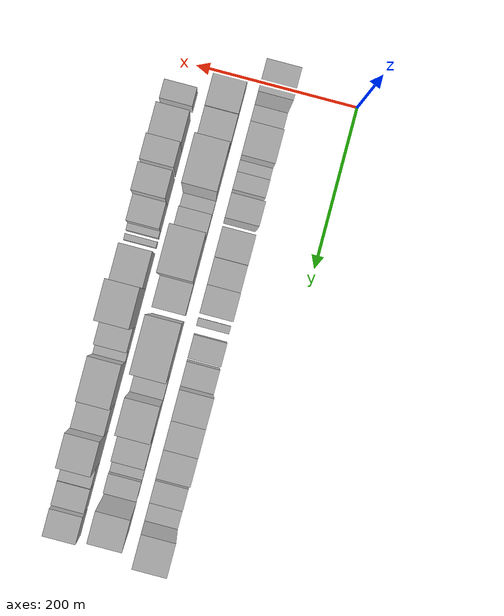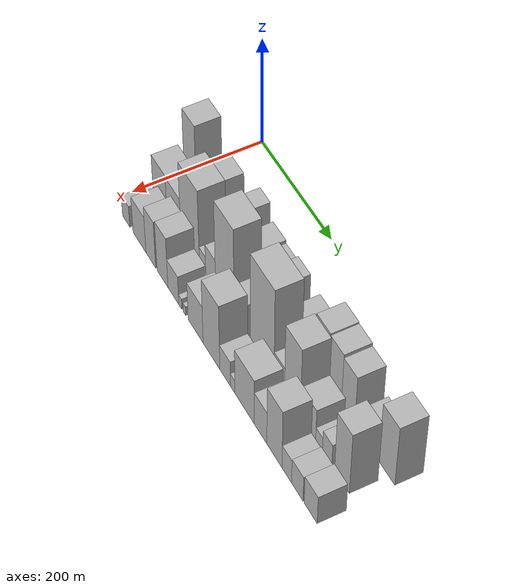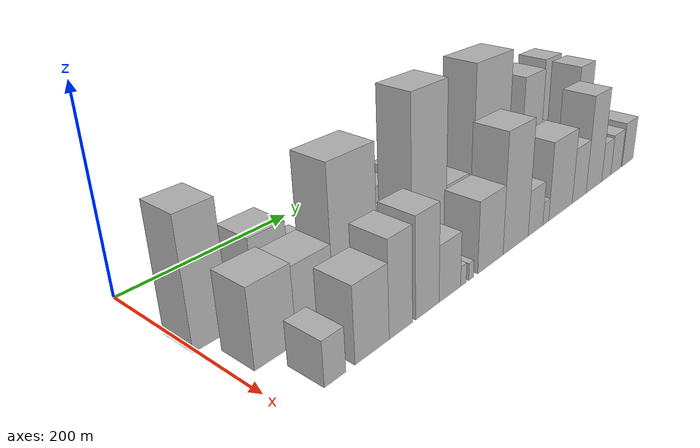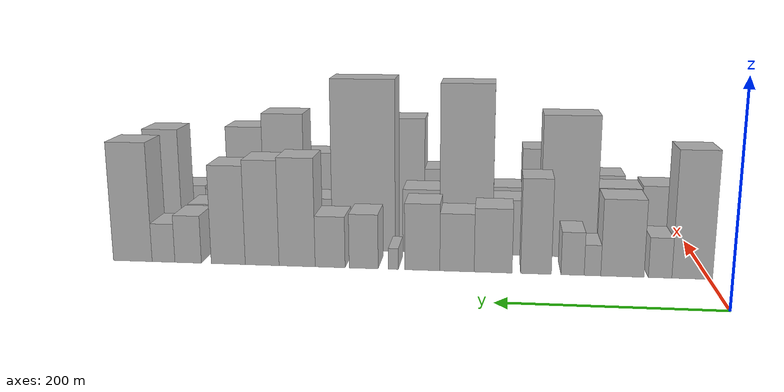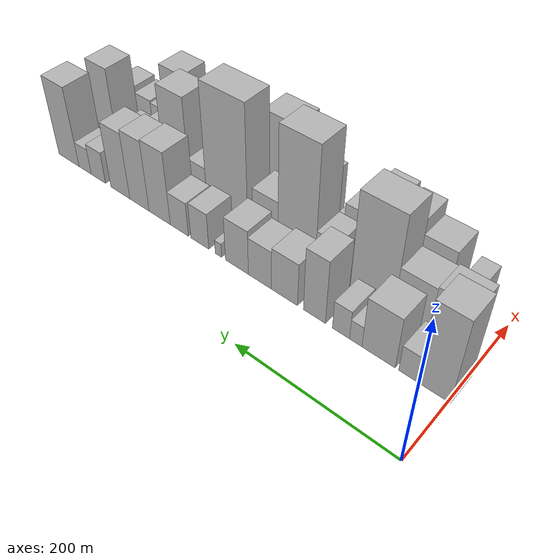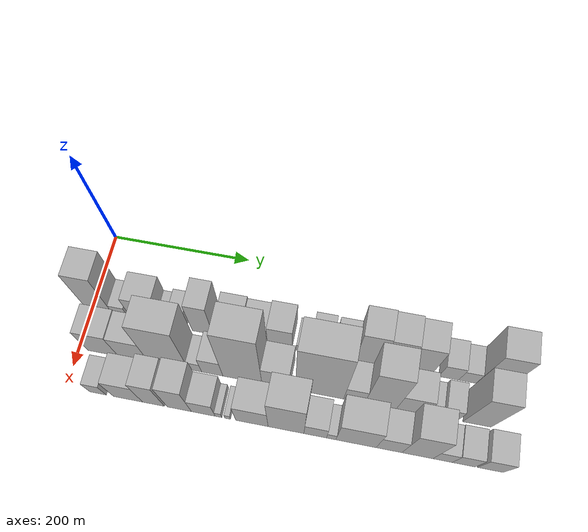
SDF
<sdf version="1.6">
 <world name="default">
  <model name="building_16">
   <static>1</static>
   <pose>100.0000 15.6804 0 0.000000 0.000000 0.000000</pose>
   <link name="link">
    <pose>0 0 61.50 0 0 0</pose>
    <collision name="collision"><geometry><box><size>40.0000 37.2234 123.0000</size></box></geometry></collision>
    <visual name="visual">
     <cast_shadows>0</cast_shadows>
     <geometry><box><size>40.0000 37.2234 123.0000</size></box></geometry>
     <material>
      <script>
       <uri>model://HANNAS_wall/materials/scripts</uri>
       <uri>model://HANNAS_wall/materials/textures</uri>
       <name>vrc/HANNAS_wall</name>
      </script>
     </material>
    </visual>
   </link>
  </model>
  <model name="building_17">
   <static>1</static>
   <pose>100.0000 45.0935 0 0.000000 0.000000 0.000000</pose>
   <link name="link">
    <pose>0 0 19.50 0 0 0</pose>
    <collision name="collision"><geometry><box><size>40.0000 21.6028 39.0000</size></box></geometry></collision>
    <visual name="visual">
     <cast_shadows>0</cast_shadows>
     <geometry><box><size>40.0000 21.6028 39.0000</size></box></geometry>
     <material>
      <script>
       <uri>model://HANNAS_wall/materials/scripts</uri>
       <uri>model://HANNAS_wall/materials/textures</uri>
       <name>vrc/HANNAS_wall</name>
      </script>
     </material>
    </visual>
   </link>
  </model>
  <model name="building_18">
   <static>1</static>
   <pose>100.0000 79.9457 0 0.000000 0.000000 0.000000</pose>
   <link name="link">
    <pose>0 0 37.50 0 0 0</pose>
    <collision name="collision"><geometry><box><size>40.0000 40.1015 75.0000</size></box></geometry></collision>
    <visual name="visual">
     <cast_shadows>0</cast_shadows>
     <geometry><box><size>40.0000 40.1015 75.0000</size></box></geometry>
     <material>
      <script>
       <uri>model://HANNAS_wall/materials/scripts</uri>
       <uri>model://HANNAS_wall/materials/textures</uri>
       <name>vrc/HANNAS_wall</name>
      </script>
     </material>
    </visual>
   </link>
  </model>
  <model name="building_19">
   <static>1</static>
   <pose>100.0000 107.7199 0 0.000000 0.000000 0.000000</pose>
   <link name="link">
    <pose>0 0 15.00 0 0 0</pose>
    <collision name="collision"><geometry><box><size>40.0000 15.4468 30.0000</size></box></geometry></collision>
    <visual name="visual">
     <cast_shadows>0</cast_shadows>
     <geometry><box><size>40.0000 15.4468 30.0000</size></box></geometry>
     <material>
      <script>
       <uri>model://HANNAS_wall/materials/scripts</uri>
       <uri>model://HANNAS_wall/materials/textures</uri>
       <name>vrc/HANNAS_wall</name>
      </script>
     </material>
    </visual>
   </link>
  </model>
  <model name="building_20">
   <static>1</static>
   <pose>100.0000 126.3243 0 0.000000 0.000000 0.000000</pose>
   <link name="link">
    <pose>0 0 21.00 0 0 0</pose>
    <collision name="collision"><geometry><box><size>40.0000 21.7621 42.0000</size></box></geometry></collision>
    <visual name="visual">
     <cast_shadows>0</cast_shadows>
     <geometry><box><size>40.0000 21.7621 42.0000</size></box></geometry>
     <material>
      <script>
       <uri>model://HANNAS_wall/materials/scripts</uri>
       <uri>model://HANNAS_wall/materials/textures</uri>
       <name>vrc/HANNAS_wall</name>
      </script>
     </material>
    </visual>
   </link>
  </model>
  <model name="building_21">
   <static>1</static>
   <pose>100.0000 160.7265 0 0.000000 0.000000 0.000000</pose>
   <link name="link">
    <pose>0 0 46.50 0 0 0</pose>
    <collision name="collision"><geometry><box><size>40.0000 29.0423 93.0000</size></box></geometry></collision>
    <visual name="visual">
     <cast_shadows>0</cast_shadows>
     <geometry><box><size>40.0000 29.0423 93.0000</size></box></geometry>
     <material>
      <script>
       <uri>model://HANNAS_wall/materials/scripts</uri>
       <uri>model://HANNAS_wall/materials/textures</uri>
       <name>vrc/HANNAS_wall</name>
      </script>
     </material>
    </visual>
   </link>
  </model>
  <model name="building_22">
   <static>1</static>
   <pose>100.0000 201.3074 0 0.000000 0.000000 0.000000</pose>
   <link name="link">
    <pose>0 0 31.50 0 0 0</pose>
    <collision name="collision"><geometry><box><size>40.0000 36.1193 63.0000</size></box></geometry></collision>
    <visual name="visual">
     <cast_shadows>0</cast_shadows>
     <geometry><box><size>40.0000 36.1193 63.0000</size></box></geometry>
     <material>
      <script>
       <uri>model://HANNAS_wall/materials/scripts</uri>
       <uri>model://HANNAS_wall/materials/textures</uri>
       <name>vrc/HANNAS_wall</name>
      </script>
     </material>
    </visual>
   </link>
  </model>
  <model name="building_23">
   <static>1</static>
   <pose>100.0000 235.8626 0 0.000000 0.000000 0.000000</pose>
   <link name="link">
    <pose>0 0 28.50 0 0 0</pose>
    <collision name="collision"><geometry><box><size>40.0000 32.9910 57.0000</size></box></geometry></collision>
    <visual name="visual">
     <cast_shadows>0</cast_shadows>
     <geometry><box><size>40.0000 32.9910 57.0000</size></box></geometry>
     <material>
      <script>
       <uri>model://HANNAS_wall/materials/scripts</uri>
       <uri>model://HANNAS_wall/materials/textures</uri>
       <name>vrc/HANNAS_wall</name>
      </script>
     </material>
    </visual>
   </link>
  </model>
  <model name="building_24">
   <static>1</static>
   <pose>100.0000 269.3877 0 0.000000 0.000000 0.000000</pose>
   <link name="link">
    <pose>0 0 33.00 0 0 0</pose>
    <collision name="collision"><geometry><box><size>40.0000 34.0592 66.0000</size></box></geometry></collision>
    <visual name="visual">
     <cast_shadows>0</cast_shadows>
     <geometry><box><size>40.0000 34.0592 66.0000</size></box></geometry>
     <material>
      <script>
       <uri>model://HANNAS_wall/materials/scripts</uri>
       <uri>model://HANNAS_wall/materials/textures</uri>
       <name>vrc/HANNAS_wall</name>
      </script>
     </material>
    </visual>
   </link>
  </model>
  <model name="building_25">
   <static>1</static>
   <pose>100.0000 297.2625 0 0.000000 0.000000 0.000000</pose>
   <link name="link">
    <pose>0 0 10.50 0 0 0</pose>
    <collision name="collision"><geometry><box><size>40.0000 9.6904 21.0000</size></box></geometry></collision>
    <visual name="visual">
     <cast_shadows>0</cast_shadows>
     <geometry><box><size>40.0000 9.6904 21.0000</size></box></geometry>
     <material>
      <script>
       <uri>model://HANNAS_wall/materials/scripts</uri>
       <uri>model://HANNAS_wall/materials/textures</uri>
       <name>vrc/HANNAS_wall</name>
      </script>
     </material>
    </visual>
   </link>
  </model>
  <model name="building_26">
   <static>1</static>
   <pose>100.0000 326.2790 0 0.000000 0.000000 0.000000</pose>
   <link name="link">
    <pose>0 0 27.00 0 0 0</pose>
    <collision name="collision"><geometry><box><size>40.0000 28.3426 54.0000</size></box></geometry></collision>
    <visual name="visual">
     <cast_shadows>0</cast_shadows>
     <geometry><box><size>40.0000 28.3426 54.0000</size></box></geometry>
     <material>
      <script>
       <uri>model://HANNAS_wall/materials/scripts</uri>
       <uri>model://HANNAS_wall/materials/textures</uri>
       <name>vrc/HANNAS_wall</name>
      </script>
     </material>
    </visual>
   </link>
  </model>
  <model name="building_27">
   <static>1</static>
   <pose>100.0000 359.1758 0 0.000000 0.000000 0.000000</pose>
   <link name="link">
    <pose>0 0 25.50 0 0 0</pose>
    <collision name="collision"><geometry><box><size>40.0000 29.4510 51.0000</size></box></geometry></collision>
    <visual name="visual">
     <cast_shadows>0</cast_shadows>
     <geometry><box><size>40.0000 29.4510 51.0000</size></box></geometry>
     <material>
      <script>
       <uri>model://HANNAS_wall/materials/scripts</uri>
       <uri>model://HANNAS_wall/materials/textures</uri>
       <name>vrc/HANNAS_wall</name>
      </script>
     </material>
    </visual>
   </link>
  </model>
  <model name="building_28">
   <static>1</static>
   <pose>100.0000 391.7978 0 0.000000 0.000000 0.000000</pose>
   <link name="link">
    <pose>0 0 54.00 0 0 0</pose>
    <collision name="collision"><geometry><box><size>40.0000 35.7929 108.0000</size></box></geometry></collision>
    <visual name="visual">
     <cast_shadows>0</cast_shadows>
     <geometry><box><size>40.0000 35.7929 108.0000</size></box></geometry>
     <material>
      <script>
       <uri>model://HANNAS_wall/materials/scripts</uri>
       <uri>model://HANNAS_wall/materials/textures</uri>
       <name>vrc/HANNAS_wall</name>
      </script>
     </material>
    </visual>
   </link>
  </model>
  <model name="building_29">
   <static>1</static>
   <pose>100.0000 426.5890 0 0.000000 0.000000 0.000000</pose>
   <link name="link">
    <pose>0 0 52.50 0 0 0</pose>
    <collision name="collision"><geometry><box><size>40.0000 33.7896 105.0000</size></box></geometry></collision>
    <visual name="visual">
     <cast_shadows>0</cast_shadows>
     <geometry><box><size>40.0000 33.7896 105.0000</size></box></geometry>
     <material>
      <script>
       <uri>model://HANNAS_wall/materials/scripts</uri>
       <uri>model://HANNAS_wall/materials/textures</uri>
       <name>vrc/HANNAS_wall</name>
      </script>
     </material>
    </visual>
   </link>
  </model>
  <model name="building_30">
   <static>1</static>
   <pose>100.0000 460.5955 0 0.000000 0.000000 0.000000</pose>
   <link name="link">
    <pose>0 0 49.50 0 0 0</pose>
    <collision name="collision"><geometry><box><size>40.0000 34.2234 99.0000</size></box></geometry></collision>
    <visual name="visual">
     <cast_shadows>0</cast_shadows>
     <geometry><box><size>40.0000 34.2234 99.0000</size></box></geometry>
     <material>
      <script>
       <uri>model://HANNAS_wall/materials/scripts</uri>
       <uri>model://HANNAS_wall/materials/textures</uri>
       <name>vrc/HANNAS_wall</name>
      </script>
     </material>
    </visual>
   </link>
  </model>
  <model name="building_31">
   <static>1</static>
   <pose>100.0000 501.1284 0 0.000000 0.000000 0.000000</pose>
   <link name="link">
    <pose>0 0 24.00 0 0 0</pose>
    <collision name="collision"><geometry><box><size>40.0000 26.8424 48.0000</size></box></geometry></collision>
    <visual name="visual">
     <cast_shadows>0</cast_shadows>
     <geometry><box><size>40.0000 26.8424 48.0000</size></box></geometry>
     <material>
      <script>
       <uri>model://HANNAS_wall/materials/scripts</uri>
       <uri>model://HANNAS_wall/materials/textures</uri>
       <name>vrc/HANNAS_wall</name>
      </script>
     </material>
    </visual>
   </link>
  </model>
  <model name="building_32">
   <static>1</static>
   <pose>100.0000 526.1630 0 0.000000 0.000000 0.000000</pose>
   <link name="link">
    <pose>0 0 19.50 0 0 0</pose>
    <collision name="collision"><geometry><box><size>40.0000 23.2268 39.0000</size></box></geometry></collision>
    <visual name="visual">
     <cast_shadows>0</cast_shadows>
     <geometry><box><size>40.0000 23.2268 39.0000</size></box></geometry>
     <material>
      <script>
       <uri>model://HANNAS_wall/materials/scripts</uri>
       <uri>model://HANNAS_wall/materials/textures</uri>
       <name>vrc/HANNAS_wall</name>
      </script>
     </material>
    </visual>
   </link>
  </model>
  <model name="building_33">
   <static>1</static>
   <pose>100.0000 557.6395 0 0.000000 0.000000 0.000000</pose>
   <link name="link">
    <pose>0 0 60.00 0 0 0</pose>
    <collision name="collision"><geometry><box><size>40.0000 39.7261 120.0000</size></box></geometry></collision>
    <visual name="visual">
     <cast_shadows>0</cast_shadows>
     <geometry><box><size>40.0000 39.7261 120.0000</size></box></geometry>
     <material>
      <script>
       <uri>model://HANNAS_wall/materials/scripts</uri>
       <uri>model://HANNAS_wall/materials/textures</uri>
       <name>vrc/HANNAS_wall</name>
      </script>
     </material>
    </visual>
   </link>
  </model>
  <model name="building_49">
   <static>1</static>
   <pose>155.0000 34.6006 0 0.000000 0.000000 0.000000</pose>
   <link name="link">
    <pose>0 0 37.50 0 0 0</pose>
    <collision name="collision"><geometry><box><size>40.0000 42.9349 75.0000</size></box></geometry></collision>
    <visual name="visual">
     <cast_shadows>0</cast_shadows>
     <geometry><box><size>40.0000 42.9349 75.0000</size></box></geometry>
     <material>
      <script>
       <uri>model://HANNAS_wall/materials/scripts</uri>
       <uri>model://HANNAS_wall/materials/textures</uri>
       <name>vrc/HANNAS_wall</name>
      </script>
     </material>
    </visual>
   </link>
  </model>
  <model name="building_50">
   <static>1</static>
   <pose>155.0000 77.5318 0 0.000000 0.000000 0.000000</pose>
   <link name="link">
    <pose>0 0 36.00 0 0 0</pose>
    <collision name="collision"><geometry><box><size>40.0000 42.9277 72.0000</size></box></geometry></collision>
    <visual name="visual">
     <cast_shadows>0</cast_shadows>
     <geometry><box><size>40.0000 42.9277 72.0000</size></box></geometry>
     <material>
      <script>
       <uri>model://HANNAS_wall/materials/scripts</uri>
       <uri>model://HANNAS_wall/materials/textures</uri>
       <name>vrc/HANNAS_wall</name>
      </script>
     </material>
    </visual>
   </link>
  </model>
  <model name="building_51">
   <static>1</static>
   <pose>155.0000 126.9181 0 0.000000 0.000000 0.000000</pose>
   <link name="link">
    <pose>0 0 72.00 0 0 0</pose>
    <collision name="collision"><geometry><box><size>40.0000 55.8449 144.0000</size></box></geometry></collision>
    <visual name="visual">
     <cast_shadows>0</cast_shadows>
     <geometry><box><size>40.0000 55.8449 144.0000</size></box></geometry>
     <material>
      <script>
       <uri>model://HANNAS_wall/materials/scripts</uri>
       <uri>model://HANNAS_wall/materials/textures</uri>
       <name>vrc/HANNAS_wall</name>
      </script>
     </material>
    </visual>
   </link>
  </model>
  <model name="building_52">
   <static>1</static>
   <pose>155.0000 163.9805 0 0.000000 0.000000 0.000000</pose>
   <link name="link">
    <pose>0 0 16.50 0 0 0</pose>
    <collision name="collision"><geometry><box><size>40.0000 18.2797 33.0000</size></box></geometry></collision>
    <visual name="visual">
     <cast_shadows>0</cast_shadows>
     <geometry><box><size>40.0000 18.2797 33.0000</size></box></geometry>
     <material>
      <script>
       <uri>model://HANNAS_wall/materials/scripts</uri>
       <uri>model://HANNAS_wall/materials/textures</uri>
       <name>vrc/HANNAS_wall</name>
      </script>
     </material>
    </visual>
   </link>
  </model>
  <model name="building_53">
   <static>1</static>
   <pose>155.0000 187.7615 0 0.000000 0.000000 0.000000</pose>
   <link name="link">
    <pose>0 0 28.50 0 0 0</pose>
    <collision name="collision"><geometry><box><size>40.0000 29.2823 57.0000</size></box></geometry></collision>
    <visual name="visual">
     <cast_shadows>0</cast_shadows>
     <geometry><box><size>40.0000 29.2823 57.0000</size></box></geometry>
     <material>
      <script>
       <uri>model://HANNAS_wall/materials/scripts</uri>
       <uri>model://HANNAS_wall/materials/textures</uri>
       <name>vrc/HANNAS_wall</name>
      </script>
     </material>
    </visual>
   </link>
  </model>
  <model name="building_54">
   <static>1</static>
   <pose>155.0000 229.2427 0 0.000000 0.000000 0.000000</pose>
   <link name="link">
    <pose>0 0 87.00 0 0 0</pose>
    <collision name="collision"><geometry><box><size>40.0000 53.6801 174.0000</size></box></geometry></collision>
    <visual name="visual">
     <cast_shadows>0</cast_shadows>
     <geometry><box><size>40.0000 53.6801 174.0000</size></box></geometry>
     <material>
      <script>
       <uri>model://HANNAS_wall/materials/scripts</uri>
       <uri>model://HANNAS_wall/materials/textures</uri>
       <name>vrc/HANNAS_wall</name>
      </script>
     </material>
    </visual>
   </link>
  </model>
  <model name="building_55">
   <static>1</static>
   <pose>155.0000 274.8793 0 0.000000 0.000000 0.000000</pose>
   <link name="link">
    <pose>0 0 33.00 0 0 0</pose>
    <collision name="collision"><geometry><box><size>40.0000 37.5931 66.0000</size></box></geometry></collision>
    <visual name="visual">
     <cast_shadows>0</cast_shadows>
     <geometry><box><size>40.0000 37.5931 66.0000</size></box></geometry>
     <material>
      <script>
       <uri>model://HANNAS_wall/materials/scripts</uri>
       <uri>model://HANNAS_wall/materials/textures</uri>
       <name>vrc/HANNAS_wall</name>
      </script>
     </material>
    </visual>
   </link>
  </model>
  <model name="building_56">
   <static>1</static>
   <pose>155.0000 334.2645 0 0.000000 0.000000 0.000000</pose>
   <link name="link">
    <pose>0 0 88.50 0 0 0</pose>
    <collision name="collision"><geometry><box><size>40.0000 65.1773 177.0000</size></box></geometry></collision>
    <visual name="visual">
     <cast_shadows>0</cast_shadows>
     <geometry><box><size>40.0000 65.1773 177.0000</size></box></geometry>
     <material>
      <script>
       <uri>model://HANNAS_wall/materials/scripts</uri>
       <uri>model://HANNAS_wall/materials/textures</uri>
       <name>vrc/HANNAS_wall</name>
      </script>
     </material>
    </visual>
   </link>
  </model>
  <model name="building_57">
   <static>1</static>
   <pose>155.0000 380.9253 0 0.000000 0.000000 0.000000</pose>
   <link name="link">
    <pose>0 0 27.00 0 0 0</pose>
    <collision name="collision"><geometry><box><size>40.0000 28.1442 54.0000</size></box></geometry></collision>
    <visual name="visual">
     <cast_shadows>0</cast_shadows>
     <geometry><box><size>40.0000 28.1442 54.0000</size></box></geometry>
     <material>
      <script>
       <uri>model://HANNAS_wall/materials/scripts</uri>
       <uri>model://HANNAS_wall/materials/textures</uri>
       <name>vrc/HANNAS_wall</name>
      </script>
     </material>
    </visual>
   </link>
  </model>
  <model name="building_58">
   <static>1</static>
   <pose>155.0000 416.1771 0 0.000000 0.000000 0.000000</pose>
   <link name="link">
    <pose>0 0 70.50 0 0 0</pose>
    <collision name="collision"><geometry><box><size>40.0000 42.3594 141.0000</size></box></geometry></collision>
    <visual name="visual">
     <cast_shadows>0</cast_shadows>
     <geometry><box><size>40.0000 42.3594 141.0000</size></box></geometry>
     <material>
      <script>
       <uri>model://HANNAS_wall/materials/scripts</uri>
       <uri>model://HANNAS_wall/materials/textures</uri>
       <name>vrc/HANNAS_wall</name>
      </script>
     </material>
    </visual>
   </link>
  </model>
  <model name="building_59">
   <static>1</static>
   <pose>155.0000 457.1126 0 0.000000 0.000000 0.000000</pose>
   <link name="link">
    <pose>0 0 33.00 0 0 0</pose>
    <collision name="collision"><geometry><box><size>40.0000 39.5115 66.0000</size></box></geometry></collision>
    <visual name="visual">
     <cast_shadows>0</cast_shadows>
     <geometry><box><size>40.0000 39.5115 66.0000</size></box></geometry>
     <material>
      <script>
       <uri>model://HANNAS_wall/materials/scripts</uri>
       <uri>model://HANNAS_wall/materials/textures</uri>
       <name>vrc/HANNAS_wall</name>
      </script>
     </material>
    </visual>
   </link>
  </model>
  <model name="building_60">
   <static>1</static>
   <pose>155.0000 485.5881 0 0.000000 0.000000 0.000000</pose>
   <link name="link">
    <pose>0 0 15.00 0 0 0</pose>
    <collision name="collision"><geometry><box><size>40.0000 17.4396 30.0000</size></box></geometry></collision>
    <visual name="visual">
     <cast_shadows>0</cast_shadows>
     <geometry><box><size>40.0000 17.4396 30.0000</size></box></geometry>
     <material>
      <script>
       <uri>model://HANNAS_wall/materials/scripts</uri>
       <uri>model://HANNAS_wall/materials/textures</uri>
       <name>vrc/HANNAS_wall</name>
      </script>
     </material>
    </visual>
   </link>
  </model>
  <model name="building_61">
   <static>1</static>
   <pose>155.0000 506.2999 0 0.000000 0.000000 0.000000</pose>
   <link name="link">
    <pose>0 0 22.50 0 0 0</pose>
    <collision name="collision"><geometry><box><size>40.0000 23.9840 45.0000</size></box></geometry></collision>
    <visual name="visual">
     <cast_shadows>0</cast_shadows>
     <geometry><box><size>40.0000 23.9840 45.0000</size></box></geometry>
     <material>
      <script>
       <uri>model://HANNAS_wall/materials/scripts</uri>
       <uri>model://HANNAS_wall/materials/textures</uri>
       <name>vrc/HANNAS_wall</name>
      </script>
     </material>
    </visual>
   </link>
  </model>
  <model name="building_62">
   <static>1</static>
   <pose>155.0000 543.8101 0 0.000000 0.000000 0.000000</pose>
   <link name="link">
    <pose>0 0 61.50 0 0 0</pose>
    <collision name="collision"><geometry><box><size>40.0000 37.0364 123.0000</size></box></geometry></collision>
    <visual name="visual">
     <cast_shadows>0</cast_shadows>
     <geometry><box><size>40.0000 37.0364 123.0000</size></box></geometry>
     <material>
      <script>
       <uri>model://HANNAS_wall/materials/scripts</uri>
       <uri>model://HANNAS_wall/materials/textures</uri>
       <name>vrc/HANNAS_wall</name>
      </script>
     </material>
    </visual>
   </link>
  </model>
  <model name="building_81">
   <static>1</static>
   <pose>210.0000 44.3629 0 0.000000 0.000000 0.000000</pose>
   <link name="link">
    <pose>0 0 21.00 0 0 0</pose>
    <collision name="collision"><geometry><box><size>40.0000 22.9081 42.0000</size></box></geometry></collision>
    <visual name="visual">
     <cast_shadows>0</cast_shadows>
     <geometry><box><size>40.0000 22.9081 42.0000</size></box></geometry>
     <material>
      <script>
       <uri>model://HANNAS_wall/materials/scripts</uri>
       <uri>model://HANNAS_wall/materials/textures</uri>
       <name>vrc/HANNAS_wall</name>
      </script>
     </material>
    </visual>
   </link>
  </model>
  <model name="building_82">
   <static>1</static>
   <pose>210.0000 85.9193 0 0.000000 0.000000 0.000000</pose>
   <link name="link">
    <pose>0 0 36.00 0 0 0</pose>
    <collision name="collision"><geometry><box><size>40.0000 40.2046 72.0000</size></box></geometry></collision>
    <visual name="visual">
     <cast_shadows>0</cast_shadows>
     <geometry><box><size>40.0000 40.2046 72.0000</size></box></geometry>
     <material>
      <script>
       <uri>model://HANNAS_wall/materials/scripts</uri>
       <uri>model://HANNAS_wall/materials/textures</uri>
       <name>vrc/HANNAS_wall</name>
      </script>
     </material>
    </visual>
   </link>
  </model>
  <model name="building_83">
   <static>1</static>
   <pose>210.0000 121.0294 0 0.000000 0.000000 0.000000</pose>
   <link name="link">
    <pose>0 0 46.50 0 0 0</pose>
    <collision name="collision"><geometry><box><size>40.0000 30.0157 93.0000</size></box></geometry></collision>
    <visual name="visual">
     <cast_shadows>0</cast_shadows>
     <geometry><box><size>40.0000 30.0157 93.0000</size></box></geometry>
     <material>
      <script>
       <uri>model://HANNAS_wall/materials/scripts</uri>
       <uri>model://HANNAS_wall/materials/textures</uri>
       <name>vrc/HANNAS_wall</name>
      </script>
     </material>
    </visual>
   </link>
  </model>
  <model name="building_84">
   <static>1</static>
   <pose>210.0000 156.4137 0 0.000000 0.000000 0.000000</pose>
   <link name="link">
    <pose>0 0 49.50 0 0 0</pose>
    <collision name="collision"><geometry><box><size>40.0000 32.7529 99.0000</size></box></geometry></collision>
    <visual name="visual">
     <cast_shadows>0</cast_shadows>
     <geometry><box><size>40.0000 32.7529 99.0000</size></box></geometry>
     <material>
      <script>
       <uri>model://HANNAS_wall/materials/scripts</uri>
       <uri>model://HANNAS_wall/materials/textures</uri>
       <name>vrc/HANNAS_wall</name>
      </script>
     </material>
    </visual>
   </link>
  </model>
  <model name="building_85">
   <static>1</static>
   <pose>210.0000 188.8846 0 0.000000 0.000000 0.000000</pose>
   <link name="link">
    <pose>0 0 28.50 0 0 0</pose>
    <collision name="collision"><geometry><box><size>40.0000 32.1888 57.0000</size></box></geometry></collision>
    <visual name="visual">
     <cast_shadows>0</cast_shadows>
     <geometry><box><size>40.0000 32.1888 57.0000</size></box></geometry>
     <material>
      <script>
       <uri>model://HANNAS_wall/materials/scripts</uri>
       <uri>model://HANNAS_wall/materials/textures</uri>
       <name>vrc/HANNAS_wall</name>
      </script>
     </material>
    </visual>
   </link>
  </model>
  <model name="building_86">
   <static>1</static>
   <pose>210.0000 209.4405 0 0.000000 0.000000 0.000000</pose>
   <link name="link">
    <pose>0 0 10.50 0 0 0</pose>
    <collision name="collision"><geometry><box><size>40.0000 8.9231 21.0000</size></box></geometry></collision>
    <visual name="visual">
     <cast_shadows>0</cast_shadows>
     <geometry><box><size>40.0000 8.9231 21.0000</size></box></geometry>
     <material>
      <script>
       <uri>model://HANNAS_wall/materials/scripts</uri>
       <uri>model://HANNAS_wall/materials/textures</uri>
       <name>vrc/HANNAS_wall</name>
      </script>
     </material>
    </visual>
   </link>
  </model>
  <model name="building_87">
   <static>1</static>
   <pose>210.0000 221.6940 0 0.000000 0.000000 0.000000</pose>
   <link name="link">
    <pose>0 0 9.00 0 0 0</pose>
    <collision name="collision"><geometry><box><size>40.0000 7.5840 18.0000</size></box></geometry></collision>
    <visual name="visual">
     <cast_shadows>0</cast_shadows>
     <geometry><box><size>40.0000 7.5840 18.0000</size></box></geometry>
     <material>
      <script>
       <uri>model://HANNAS_wall/materials/scripts</uri>
       <uri>model://HANNAS_wall/materials/textures</uri>
       <name>vrc/HANNAS_wall</name>
      </script>
     </material>
    </visual>
   </link>
  </model>
  <model name="building_88">
   <static>1</static>
   <pose>210.0000 254.2098 0 0.000000 0.000000 0.000000</pose>
   <link name="link">
    <pose>0 0 37.50 0 0 0</pose>
    <collision name="collision"><geometry><box><size>40.0000 43.4475 75.0000</size></box></geometry></collision>
    <visual name="visual">
     <cast_shadows>0</cast_shadows>
     <geometry><box><size>40.0000 43.4475 75.0000</size></box></geometry>
     <material>
      <script>
       <uri>model://HANNAS_wall/materials/scripts</uri>
       <uri>model://HANNAS_wall/materials/textures</uri>
       <name>vrc/HANNAS_wall</name>
      </script>
     </material>
    </visual>
   </link>
  </model>
  <model name="building_89">
   <static>1</static>
   <pose>210.0000 299.6462 0 0.000000 0.000000 0.000000</pose>
   <link name="link">
    <pose>0 0 64.50 0 0 0</pose>
    <collision name="collision"><geometry><box><size>40.0000 47.4252 129.0000</size></box></geometry></collision>
    <visual name="visual">
     <cast_shadows>0</cast_shadows>
     <geometry><box><size>40.0000 47.4252 129.0000</size></box></geometry>
     <material>
      <script>
       <uri>model://HANNAS_wall/materials/scripts</uri>
       <uri>model://HANNAS_wall/materials/textures</uri>
       <name>vrc/HANNAS_wall</name>
      </script>
     </material>
    </visual>
   </link>
  </model>
  <model name="building_90">
   <static>1</static>
   <pose>210.0000 338.2774 0 0.000000 0.000000 0.000000</pose>
   <link name="link">
    <pose>0 0 25.50 0 0 0</pose>
    <collision name="collision"><geometry><box><size>40.0000 29.8374 51.0000</size></box></geometry></collision>
    <visual name="visual">
     <cast_shadows>0</cast_shadows>
     <geometry><box><size>40.0000 29.8374 51.0000</size></box></geometry>
     <material>
      <script>
       <uri>model://HANNAS_wall/materials/scripts</uri>
       <uri>model://HANNAS_wall/materials/textures</uri>
       <name>vrc/HANNAS_wall</name>
      </script>
     </material>
    </visual>
   </link>
  </model>
  <model name="building_91">
   <static>1</static>
   <pose>210.0000 359.3314 0 0.000000 0.000000 0.000000</pose>
   <link name="link">
    <pose>0 0 13.50 0 0 0</pose>
    <collision name="collision"><geometry><box><size>40.0000 12.2705 27.0000</size></box></geometry></collision>
    <visual name="visual">
     <cast_shadows>0</cast_shadows>
     <geometry><box><size>40.0000 12.2705 27.0000</size></box></geometry>
     <material>
      <script>
       <uri>model://HANNAS_wall/materials/scripts</uri>
       <uri>model://HANNAS_wall/materials/textures</uri>
       <name>vrc/HANNAS_wall</name>
      </script>
     </material>
    </visual>
   </link>
  </model>
  <model name="building_92">
   <static>1</static>
   <pose>210.0000 391.8402 0 0.000000 0.000000 0.000000</pose>
   <link name="link">
    <pose>0 0 45.00 0 0 0</pose>
    <collision name="collision"><geometry><box><size>40.0000 52.7472 90.0000</size></box></geometry></collision>
    <visual name="visual">
     <cast_shadows>0</cast_shadows>
     <geometry><box><size>40.0000 52.7472 90.0000</size></box></geometry>
     <material>
      <script>
       <uri>model://HANNAS_wall/materials/scripts</uri>
       <uri>model://HANNAS_wall/materials/textures</uri>
       <name>vrc/HANNAS_wall</name>
      </script>
     </material>
    </visual>
   </link>
  </model>
  <model name="building_93">
   <static>1</static>
   <pose>210.0000 435.0425 0 0.000000 0.000000 0.000000</pose>
   <link name="link">
    <pose>0 0 33.00 0 0 0</pose>
    <collision name="collision"><geometry><box><size>40.0000 33.6574 66.0000</size></box></geometry></collision>
    <visual name="visual">
     <cast_shadows>0</cast_shadows>
     <geometry><box><size>40.0000 33.6574 66.0000</size></box></geometry>
     <material>
      <script>
       <uri>model://HANNAS_wall/materials/scripts</uri>
       <uri>model://HANNAS_wall/materials/textures</uri>
       <name>vrc/HANNAS_wall</name>
      </script>
     </material>
    </visual>
   </link>
  </model>
  <model name="building_94">
   <static>1</static>
   <pose>210.0000 471.8669 0 0.000000 0.000000 0.000000</pose>
   <link name="link">
    <pose>0 0 58.50 0 0 0</pose>
    <collision name="collision"><geometry><box><size>40.0000 39.9914 117.0000</size></box></geometry></collision>
    <visual name="visual">
     <cast_shadows>0</cast_shadows>
     <geometry><box><size>40.0000 39.9914 117.0000</size></box></geometry>
     <material>
      <script>
       <uri>model://HANNAS_wall/materials/scripts</uri>
       <uri>model://HANNAS_wall/materials/textures</uri>
       <name>vrc/HANNAS_wall</name>
      </script>
     </material>
    </visual>
   </link>
  </model>
  <model name="building_95">
   <static>1</static>
   <pose>210.0000 504.3431 0 0.000000 0.000000 0.000000</pose>
   <link name="link">
    <pose>0 0 24.00 0 0 0</pose>
    <collision name="collision"><geometry><box><size>40.0000 24.9610 48.0000</size></box></geometry></collision>
    <visual name="visual">
     <cast_shadows>0</cast_shadows>
     <geometry><box><size>40.0000 24.9610 48.0000</size></box></geometry>
     <material>
      <script>
       <uri>model://HANNAS_wall/materials/scripts</uri>
       <uri>model://HANNAS_wall/materials/textures</uri>
       <name>vrc/HANNAS_wall</name>
      </script>
     </material>
    </visual>
   </link>
  </model>
  <model name="building_96">
   <static>1</static>
   <pose>210.0000 531.4285 0 0.000000 0.000000 0.000000</pose>
   <link name="link">
    <pose>0 0 25.50 0 0 0</pose>
    <collision name="collision"><geometry><box><size>40.0000 29.2097 51.0000</size></box></geometry></collision>
    <visual name="visual">
     <cast_shadows>0</cast_shadows>
     <geometry><box><size>40.0000 29.2097 51.0000</size></box></geometry>
     <material>
      <script>
       <uri>model://HANNAS_wall/materials/scripts</uri>
       <uri>model://HANNAS_wall/materials/textures</uri>
       <name>vrc/HANNAS_wall</name>
      </script>
     </material>
    </visual>
   </link>
  </model>
  <model name="building_97">
   <static>1</static>
   <pose>210.0000 565.4782 0 0.000000 0.000000 0.000000</pose>
   <link name="link">
    <pose>0 0 28.50 0 0 0</pose>
    <collision name="collision"><geometry><box><size>40.0000 32.8898 57.0000</size></box></geometry></collision>
    <visual name="visual">
     <cast_shadows>0</cast_shadows>
     <geometry><box><size>40.0000 32.8898 57.0000</size></box></geometry>
     <material>
      <script>
       <uri>model://HANNAS_wall/materials/scripts</uri>
       <uri>model://HANNAS_wall/materials/textures</uri>
       <name>vrc/HANNAS_wall</name>
      </script>
     </material>
    </visual>
   </link>
  </model>
 </world>
</sdf>
